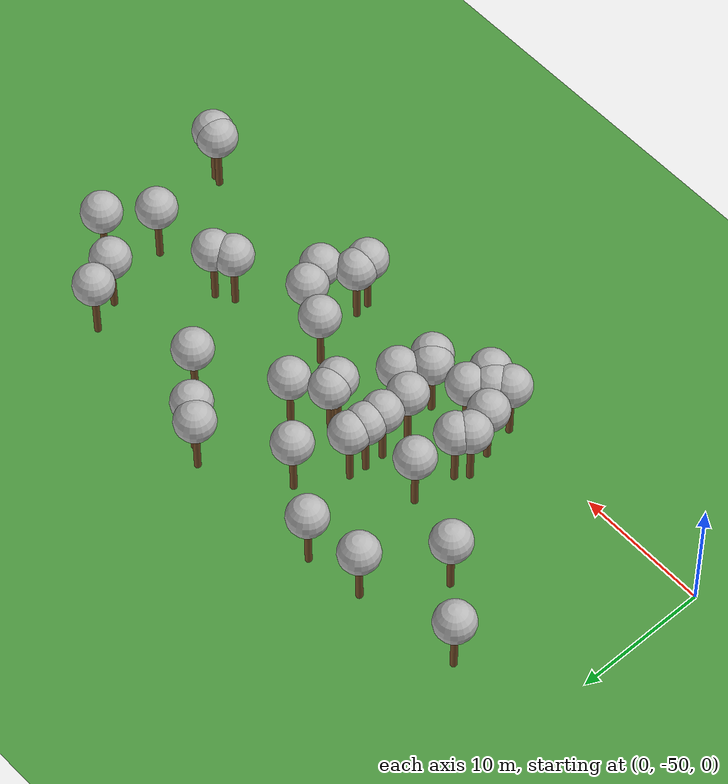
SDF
<sdf version="1.5">
 <world name="default">
  <model name="tree_simple494">
   <static>1</static>
   <link name="link">
    <pose>0 0 0.1 0 -0 0</pose>
    <collision name="collision_trunk">
     <pose>0 0 2 0 -0 0</pose>
     <geometry><cylinder><radius>0.25</radius><length>4</length></cylinder></geometry>
    </collision>
    <collision name="collision_treetop">
     <pose>0 0 5.2 0 -0 0</pose>
     <geometry><sphere><radius>1.5</radius></sphere></geometry>
    </collision>
    <visual name="trunk">
     <pose>0 0 2 0 -0 0</pose>
     <geometry><cylinder><radius>0.25</radius><length>4</length></cylinder></geometry>
     <material>
      <script>
       <uri>model://tree_simple/scripts</uri>
       <uri>model://tree_simple/materials/textures</uri>
       <name>TreeSimple/Trunk</name>
      </script>
     </material>
    </visual>
    <visual name="treetop">
     <pose>0 0 5.2 0 -0 0</pose>
     <geometry><sphere><radius>1.5</radius></sphere></geometry>
     <material>
      <script>
       <uri>model://tree_simple/scripts</uri>
       <uri>model://tree_simple/materials/textures</uri>
       <name>TreeSimple/Treetop</name>
      </script>
     </material>
    </visual>
   </link>
   <pose>39.6521252177 -42.647901406 0 0 -0 0</pose>
  </model>
  <model name="tree_simple484">
   <static>1</static>
   <link name="link">
    <pose>0 0 0.1 0 -0 0</pose>
    <collision name="collision_trunk">
     <pose>0 0 2 0 -0 0</pose>
     <geometry><cylinder><radius>0.25</radius><length>4</length></cylinder></geometry>
    </collision>
    <collision name="collision_treetop">
     <pose>0 0 5.2 0 -0 0</pose>
     <geometry><sphere><radius>1.5</radius></sphere></geometry>
    </collision>
    <visual name="trunk">
     <pose>0 0 2 0 -0 0</pose>
     <geometry><cylinder><radius>0.25</radius><length>4</length></cylinder></geometry>
     <material>
      <script>
       <uri>model://tree_simple/scripts</uri>
       <uri>model://tree_simple/materials/textures</uri>
       <name>TreeSimple/Trunk</name>
      </script>
     </material>
    </visual>
    <visual name="treetop">
     <pose>0 0 5.2 0 -0 0</pose>
     <geometry><sphere><radius>1.5</radius></sphere></geometry>
     <material>
      <script>
       <uri>model://tree_simple/scripts</uri>
       <uri>model://tree_simple/materials/textures</uri>
       <name>TreeSimple/Treetop</name>
      </script>
     </material>
    </visual>
   </link>
   <pose>19.8605088225 -47.9062304077 0 0 -0 0</pose>
  </model>
  <model name="tree_simple464">
   <static>1</static>
   <link name="link">
    <pose>0 0 0.1 0 -0 0</pose>
    <collision name="collision_trunk">
     <pose>0 0 2 0 -0 0</pose>
     <geometry><cylinder><radius>0.25</radius><length>4</length></cylinder></geometry>
    </collision>
    <collision name="collision_treetop">
     <pose>0 0 5.2 0 -0 0</pose>
     <geometry><sphere><radius>1.5</radius></sphere></geometry>
    </collision>
    <visual name="trunk">
     <pose>0 0 2 0 -0 0</pose>
     <geometry><cylinder><radius>0.25</radius><length>4</length></cylinder></geometry>
     <material>
      <script>
       <uri>model://tree_simple/scripts</uri>
       <uri>model://tree_simple/materials/textures</uri>
       <name>TreeSimple/Trunk</name>
      </script>
     </material>
    </visual>
    <visual name="treetop">
     <pose>0 0 5.2 0 -0 0</pose>
     <geometry><sphere><radius>1.5</radius></sphere></geometry>
     <material>
      <script>
       <uri>model://tree_simple/scripts</uri>
       <uri>model://tree_simple/materials/textures</uri>
       <name>TreeSimple/Treetop</name>
      </script>
     </material>
    </visual>
   </link>
   <pose>18.697132214 -49.1923863075 0 0 -0 0</pose>
  </model>
  <model name="tree_simple456">
   <static>1</static>
   <link name="link">
    <pose>0 0 0.1 0 -0 0</pose>
    <collision name="collision_trunk">
     <pose>0 0 2 0 -0 0</pose>
     <geometry><cylinder><radius>0.25</radius><length>4</length></cylinder></geometry>
    </collision>
    <collision name="collision_treetop">
     <pose>0 0 5.2 0 -0 0</pose>
     <geometry><sphere><radius>1.5</radius></sphere></geometry>
    </collision>
    <visual name="trunk">
     <pose>0 0 2 0 -0 0</pose>
     <geometry><cylinder><radius>0.25</radius><length>4</length></cylinder></geometry>
     <material>
      <script>
       <uri>model://tree_simple/scripts</uri>
       <uri>model://tree_simple/materials/textures</uri>
       <name>TreeSimple/Trunk</name>
      </script>
     </material>
    </visual>
    <visual name="treetop">
     <pose>0 0 5.2 0 -0 0</pose>
     <geometry><sphere><radius>1.5</radius></sphere></geometry>
     <material>
      <script>
       <uri>model://tree_simple/scripts</uri>
       <uri>model://tree_simple/materials/textures</uri>
       <name>TreeSimple/Treetop</name>
      </script>
     </material>
    </visual>
   </link>
   <pose>23.2076568155 -47.8591592767 0 0 -0 0</pose>
  </model>
  <model name="tree_simple430">
   <static>1</static>
   <link name="link">
    <pose>0 0 0.1 0 -0 0</pose>
    <collision name="collision_trunk">
     <pose>0 0 2 0 -0 0</pose>
     <geometry><cylinder><radius>0.25</radius><length>4</length></cylinder></geometry>
    </collision>
    <collision name="collision_treetop">
     <pose>0 0 5.2 0 -0 0</pose>
     <geometry><sphere><radius>1.5</radius></sphere></geometry>
    </collision>
    <visual name="trunk">
     <pose>0 0 2 0 -0 0</pose>
     <geometry><cylinder><radius>0.25</radius><length>4</length></cylinder></geometry>
     <material>
      <script>
       <uri>model://tree_simple/scripts</uri>
       <uri>model://tree_simple/materials/textures</uri>
       <name>TreeSimple/Trunk</name>
      </script>
     </material>
    </visual>
    <visual name="treetop">
     <pose>0 0 5.2 0 -0 0</pose>
     <geometry><sphere><radius>1.5</radius></sphere></geometry>
     <material>
      <script>
       <uri>model://tree_simple/scripts</uri>
       <uri>model://tree_simple/materials/textures</uri>
       <name>TreeSimple/Treetop</name>
      </script>
     </material>
    </visual>
   </link>
   <pose>19.6675265043 -49.8829362896 0 0 -0 0</pose>
  </model>
  <model name="tree_simple427">
   <static>1</static>
   <link name="link">
    <pose>0 0 0.1 0 -0 0</pose>
    <collision name="collision_trunk">
     <pose>0 0 2 0 -0 0</pose>
     <geometry><cylinder><radius>0.25</radius><length>4</length></cylinder></geometry>
    </collision>
    <collision name="collision_treetop">
     <pose>0 0 5.2 0 -0 0</pose>
     <geometry><sphere><radius>1.5</radius></sphere></geometry>
    </collision>
    <visual name="trunk">
     <pose>0 0 2 0 -0 0</pose>
     <geometry><cylinder><radius>0.25</radius><length>4</length></cylinder></geometry>
     <material>
      <script>
       <uri>model://tree_simple/scripts</uri>
       <uri>model://tree_simple/materials/textures</uri>
       <name>TreeSimple/Trunk</name>
      </script>
     </material>
    </visual>
    <visual name="treetop">
     <pose>0 0 5.2 0 -0 0</pose>
     <geometry><sphere><radius>1.5</radius></sphere></geometry>
     <material>
      <script>
       <uri>model://tree_simple/scripts</uri>
       <uri>model://tree_simple/materials/textures</uri>
       <name>TreeSimple/Treetop</name>
      </script>
     </material>
    </visual>
   </link>
   <pose>17.8220319496 -41.3749782968 0 0 -0 0</pose>
  </model>
  <model name="tree_simple423">
   <static>1</static>
   <link name="link">
    <pose>0 0 0.1 0 -0 0</pose>
    <collision name="collision_trunk">
     <pose>0 0 2 0 -0 0</pose>
     <geometry><cylinder><radius>0.25</radius><length>4</length></cylinder></geometry>
    </collision>
    <collision name="collision_treetop">
     <pose>0 0 5.2 0 -0 0</pose>
     <geometry><sphere><radius>1.5</radius></sphere></geometry>
    </collision>
    <visual name="trunk">
     <pose>0 0 2 0 -0 0</pose>
     <geometry><cylinder><radius>0.25</radius><length>4</length></cylinder></geometry>
     <material>
      <script>
       <uri>model://tree_simple/scripts</uri>
       <uri>model://tree_simple/materials/textures</uri>
       <name>TreeSimple/Trunk</name>
      </script>
     </material>
    </visual>
    <visual name="treetop">
     <pose>0 0 5.2 0 -0 0</pose>
     <geometry><sphere><radius>1.5</radius></sphere></geometry>
     <material>
      <script>
       <uri>model://tree_simple/scripts</uri>
       <uri>model://tree_simple/materials/textures</uri>
       <name>TreeSimple/Treetop</name>
      </script>
     </material>
    </visual>
   </link>
   <pose>22.6666902857 -47.3463091406 0 0 -0 0</pose>
  </model>
  <model name="tree_simple422">
   <static>1</static>
   <link name="link">
    <pose>0 0 0.1 0 -0 0</pose>
    <collision name="collision_trunk">
     <pose>0 0 2 0 -0 0</pose>
     <geometry><cylinder><radius>0.25</radius><length>4</length></cylinder></geometry>
    </collision>
    <collision name="collision_treetop">
     <pose>0 0 5.2 0 -0 0</pose>
     <geometry><sphere><radius>1.5</radius></sphere></geometry>
    </collision>
    <visual name="trunk">
     <pose>0 0 2 0 -0 0</pose>
     <geometry><cylinder><radius>0.25</radius><length>4</length></cylinder></geometry>
     <material>
      <script>
       <uri>model://tree_simple/scripts</uri>
       <uri>model://tree_simple/materials/textures</uri>
       <name>TreeSimple/Trunk</name>
      </script>
     </material>
    </visual>
    <visual name="treetop">
     <pose>0 0 5.2 0 -0 0</pose>
     <geometry><sphere><radius>1.5</radius></sphere></geometry>
     <material>
      <script>
       <uri>model://tree_simple/scripts</uri>
       <uri>model://tree_simple/materials/textures</uri>
       <name>TreeSimple/Treetop</name>
      </script>
     </material>
    </visual>
   </link>
   <pose>46.9340594409 -49.3003062786 0 0 -0 0</pose>
  </model>
  <model name="tree_simple406">
   <static>1</static>
   <link name="link">
    <pose>0 0 0.1 0 -0 0</pose>
    <collision name="collision_trunk">
     <pose>0 0 2 0 -0 0</pose>
     <geometry><cylinder><radius>0.25</radius><length>4</length></cylinder></geometry>
    </collision>
    <collision name="collision_treetop">
     <pose>0 0 5.2 0 -0 0</pose>
     <geometry><sphere><radius>1.5</radius></sphere></geometry>
    </collision>
    <visual name="trunk">
     <pose>0 0 2 0 -0 0</pose>
     <geometry><cylinder><radius>0.25</radius><length>4</length></cylinder></geometry>
     <material>
      <script>
       <uri>model://tree_simple/scripts</uri>
       <uri>model://tree_simple/materials/textures</uri>
       <name>TreeSimple/Trunk</name>
      </script>
     </material>
    </visual>
    <visual name="treetop">
     <pose>0 0 5.2 0 -0 0</pose>
     <geometry><sphere><radius>1.5</radius></sphere></geometry>
     <material>
      <script>
       <uri>model://tree_simple/scripts</uri>
       <uri>model://tree_simple/materials/textures</uri>
       <name>TreeSimple/Treetop</name>
      </script>
     </material>
    </visual>
   </link>
   <pose>31.8934217089 -48.8403630258 0 0 -0 0</pose>
  </model>
  <model name="tree_simple399">
   <static>1</static>
   <link name="link">
    <pose>0 0 0.1 0 -0 0</pose>
    <collision name="collision_trunk">
     <pose>0 0 2 0 -0 0</pose>
     <geometry><cylinder><radius>0.25</radius><length>4</length></cylinder></geometry>
    </collision>
    <collision name="collision_treetop">
     <pose>0 0 5.2 0 -0 0</pose>
     <geometry><sphere><radius>1.5</radius></sphere></geometry>
    </collision>
    <visual name="trunk">
     <pose>0 0 2 0 -0 0</pose>
     <geometry><cylinder><radius>0.25</radius><length>4</length></cylinder></geometry>
     <material>
      <script>
       <uri>model://tree_simple/scripts</uri>
       <uri>model://tree_simple/materials/textures</uri>
       <name>TreeSimple/Trunk</name>
      </script>
     </material>
    </visual>
    <visual name="treetop">
     <pose>0 0 5.2 0 -0 0</pose>
     <geometry><sphere><radius>1.5</radius></sphere></geometry>
     <material>
      <script>
       <uri>model://tree_simple/scripts</uri>
       <uri>model://tree_simple/materials/textures</uri>
       <name>TreeSimple/Treetop</name>
      </script>
     </material>
    </visual>
   </link>
   <pose>28.1463540184 -39.4724503771 0 0 -0 0</pose>
  </model>
  <model name="tree_simple362">
   <static>1</static>
   <link name="link">
    <pose>0 0 0.1 0 -0 0</pose>
    <collision name="collision_trunk">
     <pose>0 0 2 0 -0 0</pose>
     <geometry><cylinder><radius>0.25</radius><length>4</length></cylinder></geometry>
    </collision>
    <collision name="collision_treetop">
     <pose>0 0 5.2 0 -0 0</pose>
     <geometry><sphere><radius>1.5</radius></sphere></geometry>
    </collision>
    <visual name="trunk">
     <pose>0 0 2 0 -0 0</pose>
     <geometry><cylinder><radius>0.25</radius><length>4</length></cylinder></geometry>
     <material>
      <script>
       <uri>model://tree_simple/scripts</uri>
       <uri>model://tree_simple/materials/textures</uri>
       <name>TreeSimple/Trunk</name>
      </script>
     </material>
    </visual>
    <visual name="treetop">
     <pose>0 0 5.2 0 -0 0</pose>
     <geometry><sphere><radius>1.5</radius></sphere></geometry>
     <material>
      <script>
       <uri>model://tree_simple/scripts</uri>
       <uri>model://tree_simple/materials/textures</uri>
       <name>TreeSimple/Treetop</name>
      </script>
     </material>
    </visual>
   </link>
   <pose>44.985496552 -42.1503793978 0 0 -0 0</pose>
  </model>
  <model name="tree_simple355">
   <static>1</static>
   <link name="link">
    <pose>0 0 0.1 0 -0 0</pose>
    <collision name="collision_trunk">
     <pose>0 0 2 0 -0 0</pose>
     <geometry><cylinder><radius>0.25</radius><length>4</length></cylinder></geometry>
    </collision>
    <collision name="collision_treetop">
     <pose>0 0 5.2 0 -0 0</pose>
     <geometry><sphere><radius>1.5</radius></sphere></geometry>
    </collision>
    <visual name="trunk">
     <pose>0 0 2 0 -0 0</pose>
     <geometry><cylinder><radius>0.25</radius><length>4</length></cylinder></geometry>
     <material>
      <script>
       <uri>model://tree_simple/scripts</uri>
       <uri>model://tree_simple/materials/textures</uri>
       <name>TreeSimple/Trunk</name>
      </script>
     </material>
    </visual>
    <visual name="treetop">
     <pose>0 0 5.2 0 -0 0</pose>
     <geometry><sphere><radius>1.5</radius></sphere></geometry>
     <material>
      <script>
       <uri>model://tree_simple/scripts</uri>
       <uri>model://tree_simple/materials/textures</uri>
       <name>TreeSimple/Treetop</name>
      </script>
     </material>
    </visual>
   </link>
   <pose>25.975286884 -41.7874404901 0 0 -0 0</pose>
  </model>
  <model name="tree_simple329">
   <static>1</static>
   <link name="link">
    <pose>0 0 0.1 0 -0 0</pose>
    <collision name="collision_trunk">
     <pose>0 0 2 0 -0 0</pose>
     <geometry><cylinder><radius>0.25</radius><length>4</length></cylinder></geometry>
    </collision>
    <collision name="collision_treetop">
     <pose>0 0 5.2 0 -0 0</pose>
     <geometry><sphere><radius>1.5</radius></sphere></geometry>
    </collision>
    <visual name="trunk">
     <pose>0 0 2 0 -0 0</pose>
     <geometry><cylinder><radius>0.25</radius><length>4</length></cylinder></geometry>
     <material>
      <script>
       <uri>model://tree_simple/scripts</uri>
       <uri>model://tree_simple/materials/textures</uri>
       <name>TreeSimple/Trunk</name>
      </script>
     </material>
    </visual>
    <visual name="treetop">
     <pose>0 0 5.2 0 -0 0</pose>
     <geometry><sphere><radius>1.5</radius></sphere></geometry>
     <material>
      <script>
       <uri>model://tree_simple/scripts</uri>
       <uri>model://tree_simple/materials/textures</uri>
       <name>TreeSimple/Treetop</name>
      </script>
     </material>
    </visual>
   </link>
   <pose>22.038430334 -40.7859522783 0 0 -0 0</pose>
  </model>
  <model name="tree_simple300">
   <static>1</static>
   <link name="link">
    <pose>0 0 0.1 0 -0 0</pose>
    <collision name="collision_trunk">
     <pose>0 0 2 0 -0 0</pose>
     <geometry><cylinder><radius>0.25</radius><length>4</length></cylinder></geometry>
    </collision>
    <collision name="collision_treetop">
     <pose>0 0 5.2 0 -0 0</pose>
     <geometry><sphere><radius>1.5</radius></sphere></geometry>
    </collision>
    <visual name="trunk">
     <pose>0 0 2 0 -0 0</pose>
     <geometry><cylinder><radius>0.25</radius><length>4</length></cylinder></geometry>
     <material>
      <script>
       <uri>model://tree_simple/scripts</uri>
       <uri>model://tree_simple/materials/textures</uri>
       <name>TreeSimple/Trunk</name>
      </script>
     </material>
    </visual>
    <visual name="treetop">
     <pose>0 0 5.2 0 -0 0</pose>
     <geometry><sphere><radius>1.5</radius></sphere></geometry>
     <material>
      <script>
       <uri>model://tree_simple/scripts</uri>
       <uri>model://tree_simple/materials/textures</uri>
       <name>TreeSimple/Treetop</name>
      </script>
     </material>
    </visual>
   </link>
   <pose>34.2893754597 -36.2522401159 0 0 -0 0</pose>
  </model>
  <model name="tree_simple281">
   <static>1</static>
   <link name="link">
    <pose>0 0 0.1 0 -0 0</pose>
    <collision name="collision_trunk">
     <pose>0 0 2 0 -0 0</pose>
     <geometry><cylinder><radius>0.25</radius><length>4</length></cylinder></geometry>
    </collision>
    <collision name="collision_treetop">
     <pose>0 0 5.2 0 -0 0</pose>
     <geometry><sphere><radius>1.5</radius></sphere></geometry>
    </collision>
    <visual name="trunk">
     <pose>0 0 2 0 -0 0</pose>
     <geometry><cylinder><radius>0.25</radius><length>4</length></cylinder></geometry>
     <material>
      <script>
       <uri>model://tree_simple/scripts</uri>
       <uri>model://tree_simple/materials/textures</uri>
       <name>TreeSimple/Trunk</name>
      </script>
     </material>
    </visual>
    <visual name="treetop">
     <pose>0 0 5.2 0 -0 0</pose>
     <geometry><sphere><radius>1.5</radius></sphere></geometry>
     <material>
      <script>
       <uri>model://tree_simple/scripts</uri>
       <uri>model://tree_simple/materials/textures</uri>
       <name>TreeSimple/Treetop</name>
      </script>
     </material>
    </visual>
   </link>
   <pose>17.7631793605 -49.9798329039 0 0 -0 0</pose>
  </model>
  <model name="tree_simple280">
   <static>1</static>
   <link name="link">
    <pose>0 0 0.1 0 -0 0</pose>
    <collision name="collision_trunk">
     <pose>0 0 2 0 -0 0</pose>
     <geometry><cylinder><radius>0.25</radius><length>4</length></cylinder></geometry>
    </collision>
    <collision name="collision_treetop">
     <pose>0 0 5.2 0 -0 0</pose>
     <geometry><sphere><radius>1.5</radius></sphere></geometry>
    </collision>
    <visual name="trunk">
     <pose>0 0 2 0 -0 0</pose>
     <geometry><cylinder><radius>0.25</radius><length>4</length></cylinder></geometry>
     <material>
      <script>
       <uri>model://tree_simple/scripts</uri>
       <uri>model://tree_simple/materials/textures</uri>
       <name>TreeSimple/Trunk</name>
      </script>
     </material>
    </visual>
    <visual name="treetop">
     <pose>0 0 5.2 0 -0 0</pose>
     <geometry><sphere><radius>1.5</radius></sphere></geometry>
     <material>
      <script>
       <uri>model://tree_simple/scripts</uri>
       <uri>model://tree_simple/materials/textures</uri>
       <name>TreeSimple/Treetop</name>
      </script>
     </material>
    </visual>
   </link>
   <pose>42.8499474232 -34.7520527621 0 0 -0 0</pose>
  </model>
  <model name="tree_simple261">
   <static>1</static>
   <link name="link">
    <pose>0 0 0.1 0 -0 0</pose>
    <collision name="collision_trunk">
     <pose>0 0 2 0 -0 0</pose>
     <geometry><cylinder><radius>0.25</radius><length>4</length></cylinder></geometry>
    </collision>
    <collision name="collision_treetop">
     <pose>0 0 5.2 0 -0 0</pose>
     <geometry><sphere><radius>1.5</radius></sphere></geometry>
    </collision>
    <visual name="trunk">
     <pose>0 0 2 0 -0 0</pose>
     <geometry><cylinder><radius>0.25</radius><length>4</length></cylinder></geometry>
     <material>
      <script>
       <uri>model://tree_simple/scripts</uri>
       <uri>model://tree_simple/materials/textures</uri>
       <name>TreeSimple/Trunk</name>
      </script>
     </material>
    </visual>
    <visual name="treetop">
     <pose>0 0 5.2 0 -0 0</pose>
     <geometry><sphere><radius>1.5</radius></sphere></geometry>
     <material>
      <script>
       <uri>model://tree_simple/scripts</uri>
       <uri>model://tree_simple/materials/textures</uri>
       <name>TreeSimple/Treetop</name>
      </script>
     </material>
    </visual>
   </link>
   <pose>33.7827414367 -47.2764136507 0 0 -0 0</pose>
  </model>
  <model name="tree_simple233">
   <static>1</static>
   <link name="link">
    <pose>0 0 0.1 0 -0 0</pose>
    <collision name="collision_trunk">
     <pose>0 0 2 0 -0 0</pose>
     <geometry><cylinder><radius>0.25</radius><length>4</length></cylinder></geometry>
    </collision>
    <collision name="collision_treetop">
     <pose>0 0 5.2 0 -0 0</pose>
     <geometry><sphere><radius>1.5</radius></sphere></geometry>
    </collision>
    <visual name="trunk">
     <pose>0 0 2 0 -0 0</pose>
     <geometry><cylinder><radius>0.25</radius><length>4</length></cylinder></geometry>
     <material>
      <script>
       <uri>model://tree_simple/scripts</uri>
       <uri>model://tree_simple/materials/textures</uri>
       <name>TreeSimple/Trunk</name>
      </script>
     </material>
    </visual>
    <visual name="treetop">
     <pose>0 0 5.2 0 -0 0</pose>
     <geometry><sphere><radius>1.5</radius></sphere></geometry>
     <material>
      <script>
       <uri>model://tree_simple/scripts</uri>
       <uri>model://tree_simple/materials/textures</uri>
       <name>TreeSimple/Treetop</name>
      </script>
     </material>
    </visual>
   </link>
   <pose>21.929125889 -44.4760714013 0 0 -0 0</pose>
  </model>
  <model name="tree_simple225">
   <static>1</static>
   <link name="link">
    <pose>0 0 0.1 0 -0 0</pose>
    <collision name="collision_trunk">
     <pose>0 0 2 0 -0 0</pose>
     <geometry><cylinder><radius>0.25</radius><length>4</length></cylinder></geometry>
    </collision>
    <collision name="collision_treetop">
     <pose>0 0 5.2 0 -0 0</pose>
     <geometry><sphere><radius>1.5</radius></sphere></geometry>
    </collision>
    <visual name="trunk">
     <pose>0 0 2 0 -0 0</pose>
     <geometry><cylinder><radius>0.25</radius><length>4</length></cylinder></geometry>
     <material>
      <script>
       <uri>model://tree_simple/scripts</uri>
       <uri>model://tree_simple/materials/textures</uri>
       <name>TreeSimple/Trunk</name>
      </script>
     </material>
    </visual>
    <visual name="treetop">
     <pose>0 0 5.2 0 -0 0</pose>
     <geometry><sphere><radius>1.5</radius></sphere></geometry>
     <material>
      <script>
       <uri>model://tree_simple/scripts</uri>
       <uri>model://tree_simple/materials/textures</uri>
       <name>TreeSimple/Treetop</name>
      </script>
     </material>
    </visual>
   </link>
   <pose>30.586439973 -44.3528824328 0 0 -0 0</pose>
  </model>
  <model name="tree_simple215">
   <static>1</static>
   <link name="link">
    <pose>0 0 0.1 0 -0 0</pose>
    <collision name="collision_trunk">
     <pose>0 0 2 0 -0 0</pose>
     <geometry><cylinder><radius>0.25</radius><length>4</length></cylinder></geometry>
    </collision>
    <collision name="collision_treetop">
     <pose>0 0 5.2 0 -0 0</pose>
     <geometry><sphere><radius>1.5</radius></sphere></geometry>
    </collision>
    <visual name="trunk">
     <pose>0 0 2 0 -0 0</pose>
     <geometry><cylinder><radius>0.25</radius><length>4</length></cylinder></geometry>
     <material>
      <script>
       <uri>model://tree_simple/scripts</uri>
       <uri>model://tree_simple/materials/textures</uri>
       <name>TreeSimple/Trunk</name>
      </script>
     </material>
    </visual>
    <visual name="treetop">
     <pose>0 0 5.2 0 -0 0</pose>
     <geometry><sphere><radius>1.5</radius></sphere></geometry>
     <material>
      <script>
       <uri>model://tree_simple/scripts</uri>
       <uri>model://tree_simple/materials/textures</uri>
       <name>TreeSimple/Treetop</name>
      </script>
     </material>
    </visual>
   </link>
   <pose>6.8108440726 -34.7298391892 0 0 -0 0</pose>
  </model>
  <model name="tree_simple207">
   <static>1</static>
   <link name="link">
    <pose>0 0 0.1 0 -0 0</pose>
    <collision name="collision_trunk">
     <pose>0 0 2 0 -0 0</pose>
     <geometry><cylinder><radius>0.25</radius><length>4</length></cylinder></geometry>
    </collision>
    <collision name="collision_treetop">
     <pose>0 0 5.2 0 -0 0</pose>
     <geometry><sphere><radius>1.5</radius></sphere></geometry>
    </collision>
    <visual name="trunk">
     <pose>0 0 2 0 -0 0</pose>
     <geometry><cylinder><radius>0.25</radius><length>4</length></cylinder></geometry>
     <material>
      <script>
       <uri>model://tree_simple/scripts</uri>
       <uri>model://tree_simple/materials/textures</uri>
       <name>TreeSimple/Trunk</name>
      </script>
     </material>
    </visual>
    <visual name="treetop">
     <pose>0 0 5.2 0 -0 0</pose>
     <geometry><sphere><radius>1.5</radius></sphere></geometry>
     <material>
      <script>
       <uri>model://tree_simple/scripts</uri>
       <uri>model://tree_simple/materials/textures</uri>
       <name>TreeSimple/Treetop</name>
      </script>
     </material>
    </visual>
   </link>
   <pose>29.7171513821 -32.5331350523 0 0 -0 0</pose>
  </model>
  <model name="tree_simple202">
   <static>1</static>
   <link name="link">
    <pose>0 0 0.1 0 -0 0</pose>
    <collision name="collision_trunk">
     <pose>0 0 2 0 -0 0</pose>
     <geometry><cylinder><radius>0.25</radius><length>4</length></cylinder></geometry>
    </collision>
    <collision name="collision_treetop">
     <pose>0 0 5.2 0 -0 0</pose>
     <geometry><sphere><radius>1.5</radius></sphere></geometry>
    </collision>
    <visual name="trunk">
     <pose>0 0 2 0 -0 0</pose>
     <geometry><cylinder><radius>0.25</radius><length>4</length></cylinder></geometry>
     <material>
      <script>
       <uri>model://tree_simple/scripts</uri>
       <uri>model://tree_simple/materials/textures</uri>
       <name>TreeSimple/Trunk</name>
      </script>
     </material>
    </visual>
    <visual name="treetop">
     <pose>0 0 5.2 0 -0 0</pose>
     <geometry><sphere><radius>1.5</radius></sphere></geometry>
     <material>
      <script>
       <uri>model://tree_simple/scripts</uri>
       <uri>model://tree_simple/materials/textures</uri>
       <name>TreeSimple/Treetop</name>
      </script>
     </material>
    </visual>
   </link>
   <pose>33.1651643467 -45.5260416914 0 0 -0 0</pose>
  </model>
  <model name="tree_simple182">
   <static>1</static>
   <link name="link">
    <pose>0 0 0.1 0 -0 0</pose>
    <collision name="collision_trunk">
     <pose>0 0 2 0 -0 0</pose>
     <geometry><cylinder><radius>0.25</radius><length>4</length></cylinder></geometry>
    </collision>
    <collision name="collision_treetop">
     <pose>0 0 5.2 0 -0 0</pose>
     <geometry><sphere><radius>1.5</radius></sphere></geometry>
    </collision>
    <visual name="trunk">
     <pose>0 0 2 0 -0 0</pose>
     <geometry><cylinder><radius>0.25</radius><length>4</length></cylinder></geometry>
     <material>
      <script>
       <uri>model://tree_simple/scripts</uri>
       <uri>model://tree_simple/materials/textures</uri>
       <name>TreeSimple/Trunk</name>
      </script>
     </material>
    </visual>
    <visual name="treetop">
     <pose>0 0 5.2 0 -0 0</pose>
     <geometry><sphere><radius>1.5</radius></sphere></geometry>
     <material>
      <script>
       <uri>model://tree_simple/scripts</uri>
       <uri>model://tree_simple/materials/textures</uri>
       <name>TreeSimple/Treetop</name>
      </script>
     </material>
    </visual>
   </link>
   <pose>31.0475626231 -33.3896196972 0 0 -0 0</pose>
  </model>
  <model name="tree_simple173">
   <static>1</static>
   <link name="link">
    <pose>0 0 0.1 0 -0 0</pose>
    <collision name="collision_trunk">
     <pose>0 0 2 0 -0 0</pose>
     <geometry><cylinder><radius>0.25</radius><length>4</length></cylinder></geometry>
    </collision>
    <collision name="collision_treetop">
     <pose>0 0 5.2 0 -0 0</pose>
     <geometry><sphere><radius>1.5</radius></sphere></geometry>
    </collision>
    <visual name="trunk">
     <pose>0 0 2 0 -0 0</pose>
     <geometry><cylinder><radius>0.25</radius><length>4</length></cylinder></geometry>
     <material>
      <script>
       <uri>model://tree_simple/scripts</uri>
       <uri>model://tree_simple/materials/textures</uri>
       <name>TreeSimple/Trunk</name>
      </script>
     </material>
    </visual>
    <visual name="treetop">
     <pose>0 0 5.2 0 -0 0</pose>
     <geometry><sphere><radius>1.5</radius></sphere></geometry>
     <material>
      <script>
       <uri>model://tree_simple/scripts</uri>
       <uri>model://tree_simple/materials/textures</uri>
       <name>TreeSimple/Treetop</name>
      </script>
     </material>
    </visual>
   </link>
   <pose>43.8187371286 -37.037678565 0 0 -0 0</pose>
  </model>
  <model name="tree_simple169">
   <static>1</static>
   <link name="link">
    <pose>0 0 0.1 0 -0 0</pose>
    <collision name="collision_trunk">
     <pose>0 0 2 0 -0 0</pose>
     <geometry><cylinder><radius>0.25</radius><length>4</length></cylinder></geometry>
    </collision>
    <collision name="collision_treetop">
     <pose>0 0 5.2 0 -0 0</pose>
     <geometry><sphere><radius>1.5</radius></sphere></geometry>
    </collision>
    <visual name="trunk">
     <pose>0 0 2 0 -0 0</pose>
     <geometry><cylinder><radius>0.25</radius><length>4</length></cylinder></geometry>
     <material>
      <script>
       <uri>model://tree_simple/scripts</uri>
       <uri>model://tree_simple/materials/textures</uri>
       <name>TreeSimple/Trunk</name>
      </script>
     </material>
    </visual>
    <visual name="treetop">
     <pose>0 0 5.2 0 -0 0</pose>
     <geometry><sphere><radius>1.5</radius></sphere></geometry>
     <material>
      <script>
       <uri>model://tree_simple/scripts</uri>
       <uri>model://tree_simple/materials/textures</uri>
       <name>TreeSimple/Treetop</name>
      </script>
     </material>
    </visual>
   </link>
   <pose>25.7710646255 -40.9498520998 0 0 -0 0</pose>
  </model>
  <model name="tree_simple167">
   <static>1</static>
   <link name="link">
    <pose>0 0 0.1 0 -0 0</pose>
    <collision name="collision_trunk">
     <pose>0 0 2 0 -0 0</pose>
     <geometry><cylinder><radius>0.25</radius><length>4</length></cylinder></geometry>
    </collision>
    <collision name="collision_treetop">
     <pose>0 0 5.2 0 -0 0</pose>
     <geometry><sphere><radius>1.5</radius></sphere></geometry>
    </collision>
    <visual name="trunk">
     <pose>0 0 2 0 -0 0</pose>
     <geometry><cylinder><radius>0.25</radius><length>4</length></cylinder></geometry>
     <material>
      <script>
       <uri>model://tree_simple/scripts</uri>
       <uri>model://tree_simple/materials/textures</uri>
       <name>TreeSimple/Trunk</name>
      </script>
     </material>
    </visual>
    <visual name="treetop">
     <pose>0 0 5.2 0 -0 0</pose>
     <geometry><sphere><radius>1.5</radius></sphere></geometry>
     <material>
      <script>
       <uri>model://tree_simple/scripts</uri>
       <uri>model://tree_simple/materials/textures</uri>
       <name>TreeSimple/Treetop</name>
      </script>
     </material>
    </visual>
   </link>
   <pose>14.7724548693 -33.6841584831 0 0 -0 0</pose>
  </model>
  <model name="tree_simple153">
   <static>1</static>
   <link name="link">
    <pose>0 0 0.1 0 -0 0</pose>
    <collision name="collision_trunk">
     <pose>0 0 2 0 -0 0</pose>
     <geometry><cylinder><radius>0.25</radius><length>4</length></cylinder></geometry>
    </collision>
    <collision name="collision_treetop">
     <pose>0 0 5.2 0 -0 0</pose>
     <geometry><sphere><radius>1.5</radius></sphere></geometry>
    </collision>
    <visual name="trunk">
     <pose>0 0 2 0 -0 0</pose>
     <geometry><cylinder><radius>0.25</radius><length>4</length></cylinder></geometry>
     <material>
      <script>
       <uri>model://tree_simple/scripts</uri>
       <uri>model://tree_simple/materials/textures</uri>
       <name>TreeSimple/Trunk</name>
      </script>
     </material>
    </visual>
    <visual name="treetop">
     <pose>0 0 5.2 0 -0 0</pose>
     <geometry><sphere><radius>1.5</radius></sphere></geometry>
     <material>
      <script>
       <uri>model://tree_simple/scripts</uri>
       <uri>model://tree_simple/materials/textures</uri>
       <name>TreeSimple/Treetop</name>
      </script>
     </material>
    </visual>
   </link>
   <pose>24.0970841452 -36.1585269214 0 0 -0 0</pose>
  </model>
  <model name="tree_simple139">
   <static>1</static>
   <link name="link">
    <pose>0 0 0.1 0 -0 0</pose>
    <collision name="collision_trunk">
     <pose>0 0 2 0 -0 0</pose>
     <geometry><cylinder><radius>0.25</radius><length>4</length></cylinder></geometry>
    </collision>
    <collision name="collision_treetop">
     <pose>0 0 5.2 0 -0 0</pose>
     <geometry><sphere><radius>1.5</radius></sphere></geometry>
    </collision>
    <visual name="trunk">
     <pose>0 0 2 0 -0 0</pose>
     <geometry><cylinder><radius>0.25</radius><length>4</length></cylinder></geometry>
     <material>
      <script>
       <uri>model://tree_simple/scripts</uri>
       <uri>model://tree_simple/materials/textures</uri>
       <name>TreeSimple/Trunk</name>
      </script>
     </material>
    </visual>
    <visual name="treetop">
     <pose>0 0 5.2 0 -0 0</pose>
     <geometry><sphere><radius>1.5</radius></sphere></geometry>
     <material>
      <script>
       <uri>model://tree_simple/scripts</uri>
       <uri>model://tree_simple/materials/textures</uri>
       <name>TreeSimple/Treetop</name>
      </script>
     </material>
    </visual>
   </link>
   <pose>16.853661786 -45.5057571818 0 0 -0 0</pose>
  </model>
  <model name="tree_simple136">
   <static>1</static>
   <link name="link">
    <pose>0 0 0.1 0 -0 0</pose>
    <collision name="collision_trunk">
     <pose>0 0 2 0 -0 0</pose>
     <geometry><cylinder><radius>0.25</radius><length>4</length></cylinder></geometry>
    </collision>
    <collision name="collision_treetop">
     <pose>0 0 5.2 0 -0 0</pose>
     <geometry><sphere><radius>1.5</radius></sphere></geometry>
    </collision>
    <visual name="trunk">
     <pose>0 0 2 0 -0 0</pose>
     <geometry><cylinder><radius>0.25</radius><length>4</length></cylinder></geometry>
     <material>
      <script>
       <uri>model://tree_simple/scripts</uri>
       <uri>model://tree_simple/materials/textures</uri>
       <name>TreeSimple/Trunk</name>
      </script>
     </material>
    </visual>
    <visual name="treetop">
     <pose>0 0 5.2 0 -0 0</pose>
     <geometry><sphere><radius>1.5</radius></sphere></geometry>
     <material>
      <script>
       <uri>model://tree_simple/scripts</uri>
       <uri>model://tree_simple/materials/textures</uri>
       <name>TreeSimple/Treetop</name>
      </script>
     </material>
    </visual>
   </link>
   <pose>47.5460904113 -49.4529023421 0 0 -0 0</pose>
  </model>
  <model name="tree_simple123">
   <static>1</static>
   <link name="link">
    <pose>0 0 0.1 0 -0 0</pose>
    <collision name="collision_trunk">
     <pose>0 0 2 0 -0 0</pose>
     <geometry><cylinder><radius>0.25</radius><length>4</length></cylinder></geometry>
    </collision>
    <collision name="collision_treetop">
     <pose>0 0 5.2 0 -0 0</pose>
     <geometry><sphere><radius>1.5</radius></sphere></geometry>
    </collision>
    <visual name="trunk">
     <pose>0 0 2 0 -0 0</pose>
     <geometry><cylinder><radius>0.25</radius><length>4</length></cylinder></geometry>
     <material>
      <script>
       <uri>model://tree_simple/scripts</uri>
       <uri>model://tree_simple/materials/textures</uri>
       <name>TreeSimple/Trunk</name>
      </script>
     </material>
    </visual>
    <visual name="treetop">
     <pose>0 0 5.2 0 -0 0</pose>
     <geometry><sphere><radius>1.5</radius></sphere></geometry>
     <material>
      <script>
       <uri>model://tree_simple/scripts</uri>
       <uri>model://tree_simple/materials/textures</uri>
       <name>TreeSimple/Treetop</name>
      </script>
     </material>
    </visual>
   </link>
   <pose>17.3351285606 -47.5264442332 0 0 -0 0</pose>
  </model>
  <model name="tree_simple115">
   <static>1</static>
   <link name="link">
    <pose>0 0 0.1 0 -0 0</pose>
    <collision name="collision_trunk">
     <pose>0 0 2 0 -0 0</pose>
     <geometry><cylinder><radius>0.25</radius><length>4</length></cylinder></geometry>
    </collision>
    <collision name="collision_treetop">
     <pose>0 0 5.2 0 -0 0</pose>
     <geometry><sphere><radius>1.5</radius></sphere></geometry>
    </collision>
    <visual name="trunk">
     <pose>0 0 2 0 -0 0</pose>
     <geometry><cylinder><radius>0.25</radius><length>4</length></cylinder></geometry>
     <material>
      <script>
       <uri>model://tree_simple/scripts</uri>
       <uri>model://tree_simple/materials/textures</uri>
       <name>TreeSimple/Trunk</name>
      </script>
     </material>
    </visual>
    <visual name="treetop">
     <pose>0 0 5.2 0 -0 0</pose>
     <geometry><sphere><radius>1.5</radius></sphere></geometry>
     <material>
      <script>
       <uri>model://tree_simple/scripts</uri>
       <uri>model://tree_simple/materials/textures</uri>
       <name>TreeSimple/Treetop</name>
      </script>
     </material>
    </visual>
   </link>
   <pose>23.9238582862 -45.4027076844 0 0 -0 0</pose>
  </model>
  <model name="tree_simple96">
   <static>1</static>
   <link name="link">
    <pose>0 0 0.1 0 -0 0</pose>
    <collision name="collision_trunk">
     <pose>0 0 2 0 -0 0</pose>
     <geometry><cylinder><radius>0.25</radius><length>4</length></cylinder></geometry>
    </collision>
    <collision name="collision_treetop">
     <pose>0 0 5.2 0 -0 0</pose>
     <geometry><sphere><radius>1.5</radius></sphere></geometry>
    </collision>
    <visual name="trunk">
     <pose>0 0 2 0 -0 0</pose>
     <geometry><cylinder><radius>0.25</radius><length>4</length></cylinder></geometry>
     <material>
      <script>
       <uri>model://tree_simple/scripts</uri>
       <uri>model://tree_simple/materials/textures</uri>
       <name>TreeSimple/Trunk</name>
      </script>
     </material>
    </visual>
    <visual name="treetop">
     <pose>0 0 5.2 0 -0 0</pose>
     <geometry><sphere><radius>1.5</radius></sphere></geometry>
     <material>
      <script>
       <uri>model://tree_simple/scripts</uri>
       <uri>model://tree_simple/materials/textures</uri>
       <name>TreeSimple/Treetop</name>
      </script>
     </material>
    </visual>
   </link>
   <pose>17.4748828609 -44.6574809929 0 0 -0 0</pose>
  </model>
  <model name="tree_simple56">
   <static>1</static>
   <link name="link">
    <pose>0 0 0.1 0 -0 0</pose>
    <collision name="collision_trunk">
     <pose>0 0 2 0 -0 0</pose>
     <geometry><cylinder><radius>0.25</radius><length>4</length></cylinder></geometry>
    </collision>
    <collision name="collision_treetop">
     <pose>0 0 5.2 0 -0 0</pose>
     <geometry><sphere><radius>1.5</radius></sphere></geometry>
    </collision>
    <visual name="trunk">
     <pose>0 0 2 0 -0 0</pose>
     <geometry><cylinder><radius>0.25</radius><length>4</length></cylinder></geometry>
     <material>
      <script>
       <uri>model://tree_simple/scripts</uri>
       <uri>model://tree_simple/materials/textures</uri>
       <name>TreeSimple/Trunk</name>
      </script>
     </material>
    </visual>
    <visual name="treetop">
     <pose>0 0 5.2 0 -0 0</pose>
     <geometry><sphere><radius>1.5</radius></sphere></geometry>
     <material>
      <script>
       <uri>model://tree_simple/scripts</uri>
       <uri>model://tree_simple/materials/textures</uri>
       <name>TreeSimple/Treetop</name>
      </script>
     </material>
    </visual>
   </link>
   <pose>38.4020388854 -43.3995733347 0 0 -0 0</pose>
  </model>
  <model name="tree_simple52">
   <static>1</static>
   <link name="link">
    <pose>0 0 0.1 0 -0 0</pose>
    <collision name="collision_trunk">
     <pose>0 0 2 0 -0 0</pose>
     <geometry><cylinder><radius>0.25</radius><length>4</length></cylinder></geometry>
    </collision>
    <collision name="collision_treetop">
     <pose>0 0 5.2 0 -0 0</pose>
     <geometry><sphere><radius>1.5</radius></sphere></geometry>
    </collision>
    <visual name="trunk">
     <pose>0 0 2 0 -0 0</pose>
     <geometry><cylinder><radius>0.25</radius><length>4</length></cylinder></geometry>
     <material>
      <script>
       <uri>model://tree_simple/scripts</uri>
       <uri>model://tree_simple/materials/textures</uri>
       <name>TreeSimple/Trunk</name>
      </script>
     </material>
    </visual>
    <visual name="treetop">
     <pose>0 0 5.2 0 -0 0</pose>
     <geometry><sphere><radius>1.5</radius></sphere></geometry>
     <material>
      <script>
       <uri>model://tree_simple/scripts</uri>
       <uri>model://tree_simple/materials/textures</uri>
       <name>TreeSimple/Treetop</name>
      </script>
     </material>
    </visual>
   </link>
   <pose>22.195457895 -39.5072380211 0 0 -0 0</pose>
  </model>
  <model name="tree_simple42">
   <static>1</static>
   <link name="link">
    <pose>0 0 0.1 0 -0 0</pose>
    <collision name="collision_trunk">
     <pose>0 0 2 0 -0 0</pose>
     <geometry><cylinder><radius>0.25</radius><length>4</length></cylinder></geometry>
    </collision>
    <collision name="collision_treetop">
     <pose>0 0 5.2 0 -0 0</pose>
     <geometry><sphere><radius>1.5</radius></sphere></geometry>
    </collision>
    <visual name="trunk">
     <pose>0 0 2 0 -0 0</pose>
     <geometry><cylinder><radius>0.25</radius><length>4</length></cylinder></geometry>
     <material>
      <script>
       <uri>model://tree_simple/scripts</uri>
       <uri>model://tree_simple/materials/textures</uri>
       <name>TreeSimple/Trunk</name>
      </script>
     </material>
    </visual>
    <visual name="treetop">
     <pose>0 0 5.2 0 -0 0</pose>
     <geometry><sphere><radius>1.5</radius></sphere></geometry>
     <material>
      <script>
       <uri>model://tree_simple/scripts</uri>
       <uri>model://tree_simple/materials/textures</uri>
       <name>TreeSimple/Treetop</name>
      </script>
     </material>
    </visual>
   </link>
   <pose>19.1195153572 -33.0751098478 0 0 -0 0</pose>
  </model>
  <model name="tree_simple22">
   <static>1</static>
   <link name="link">
    <pose>0 0 0.1 0 -0 0</pose>
    <collision name="collision_trunk">
     <pose>0 0 2 0 -0 0</pose>
     <geometry><cylinder><radius>0.25</radius><length>4</length></cylinder></geometry>
    </collision>
    <collision name="collision_treetop">
     <pose>0 0 5.2 0 -0 0</pose>
     <geometry><sphere><radius>1.5</radius></sphere></geometry>
    </collision>
    <visual name="trunk">
     <pose>0 0 2 0 -0 0</pose>
     <geometry><cylinder><radius>0.25</radius><length>4</length></cylinder></geometry>
     <material>
      <script>
       <uri>model://tree_simple/scripts</uri>
       <uri>model://tree_simple/materials/textures</uri>
       <name>TreeSimple/Trunk</name>
      </script>
     </material>
    </visual>
    <visual name="treetop">
     <pose>0 0 5.2 0 -0 0</pose>
     <geometry><sphere><radius>1.5</radius></sphere></geometry>
     <material>
      <script>
       <uri>model://tree_simple/scripts</uri>
       <uri>model://tree_simple/materials/textures</uri>
       <name>TreeSimple/Treetop</name>
      </script>
     </material>
    </visual>
   </link>
   <pose>11.4199673575 -38.694355257 0 0 -0 0</pose>
  </model>
  <model name="tree_simple16">
   <static>1</static>
   <link name="link">
    <pose>0 0 0.1 0 -0 0</pose>
    <collision name="collision_trunk">
     <pose>0 0 2 0 -0 0</pose>
     <geometry><cylinder><radius>0.25</radius><length>4</length></cylinder></geometry>
    </collision>
    <collision name="collision_treetop">
     <pose>0 0 5.2 0 -0 0</pose>
     <geometry><sphere><radius>1.5</radius></sphere></geometry>
    </collision>
    <visual name="trunk">
     <pose>0 0 2 0 -0 0</pose>
     <geometry><cylinder><radius>0.25</radius><length>4</length></cylinder></geometry>
     <material>
      <script>
       <uri>model://tree_simple/scripts</uri>
       <uri>model://tree_simple/materials/textures</uri>
       <name>TreeSimple/Trunk</name>
      </script>
     </material>
    </visual>
    <visual name="treetop">
     <pose>0 0 5.2 0 -0 0</pose>
     <geometry><sphere><radius>1.5</radius></sphere></geometry>
     <material>
      <script>
       <uri>model://tree_simple/scripts</uri>
       <uri>model://tree_simple/materials/textures</uri>
       <name>TreeSimple/Treetop</name>
      </script>
     </material>
    </visual>
   </link>
   <pose>32.0026070431 -49.9548957823 0 0 -0 0</pose>
  </model>
  <model name="tree_simple13">
   <static>1</static>
   <link name="link">
    <pose>0 0 0.1 0 -0 0</pose>
    <collision name="collision_trunk">
     <pose>0 0 2 0 -0 0</pose>
     <geometry><cylinder><radius>0.25</radius><length>4</length></cylinder></geometry>
    </collision>
    <collision name="collision_treetop">
     <pose>0 0 5.2 0 -0 0</pose>
     <geometry><sphere><radius>1.5</radius></sphere></geometry>
    </collision>
    <visual name="trunk">
     <pose>0 0 2 0 -0 0</pose>
     <geometry><cylinder><radius>0.25</radius><length>4</length></cylinder></geometry>
     <material>
      <script>
       <uri>model://tree_simple/scripts</uri>
       <uri>model://tree_simple/materials/textures</uri>
       <name>TreeSimple/Trunk</name>
      </script>
     </material>
    </visual>
    <visual name="treetop">
     <pose>0 0 5.2 0 -0 0</pose>
     <geometry><sphere><radius>1.5</radius></sphere></geometry>
     <material>
      <script>
       <uri>model://tree_simple/scripts</uri>
       <uri>model://tree_simple/materials/textures</uri>
       <name>TreeSimple/Treetop</name>
      </script>
     </material>
    </visual>
   </link>
   <pose>21.9742431084 -42.2362921442 0 0 -0 0</pose>
  </model>
  <model name="tree_simple5">
   <static>1</static>
   <link name="link">
    <pose>0 0 0.1 0 -0 0</pose>
    <collision name="collision_trunk">
     <pose>0 0 2 0 -0 0</pose>
     <geometry><cylinder><radius>0.25</radius><length>4</length></cylinder></geometry>
    </collision>
    <collision name="collision_treetop">
     <pose>0 0 5.2 0 -0 0</pose>
     <geometry><sphere><radius>1.5</radius></sphere></geometry>
    </collision>
    <visual name="trunk">
     <pose>0 0 2 0 -0 0</pose>
     <geometry><cylinder><radius>0.25</radius><length>4</length></cylinder></geometry>
     <material>
      <script>
       <uri>model://tree_simple/scripts</uri>
       <uri>model://tree_simple/materials/textures</uri>
       <name>TreeSimple/Trunk</name>
      </script>
     </material>
    </visual>
    <visual name="treetop">
     <pose>0 0 5.2 0 -0 0</pose>
     <geometry><sphere><radius>1.5</radius></sphere></geometry>
     <material>
      <script>
       <uri>model://tree_simple/scripts</uri>
       <uri>model://tree_simple/materials/textures</uri>
       <name>TreeSimple/Treetop</name>
      </script>
     </material>
    </visual>
   </link>
   <pose>47.2513402204 -39.1195744198 0 0 -0 0</pose>
  </model>
  <model name="ground_plane">
   <static>true</static>
   <link name="link">
    <collision name="collision">
     <geometry><plane><normal>0 0 1</normal><size>250 250</size></plane></geometry>
     <surface><friction><ode><mu>100</mu><mu2>50</mu2></ode></friction></surface>
    </collision>
    <visual name="grass">
     <cast_shadows>false</cast_shadows>
     <geometry><plane><normal>0 0 1</normal><size>150 250</size></plane></geometry>
     <material>
      <script><uri>file://media/materials/scripts/gazebo.material</uri><name>Gazebo/Grass</name></script>
     </material>
    </visual>
   </link>
  </model>
 </world>
</sdf>
